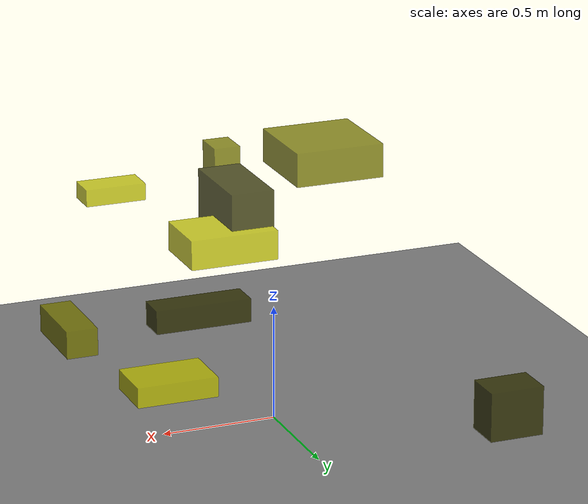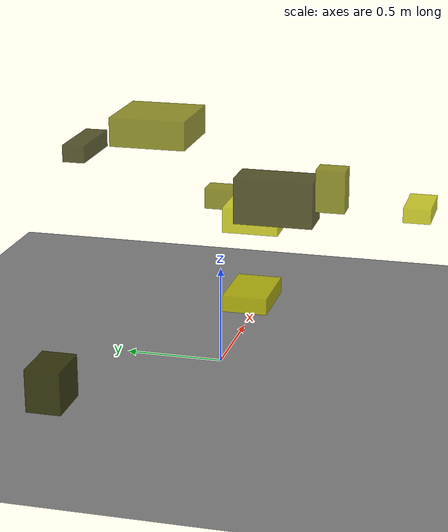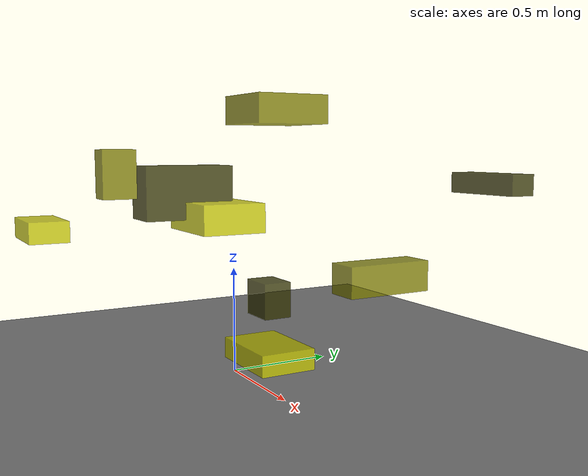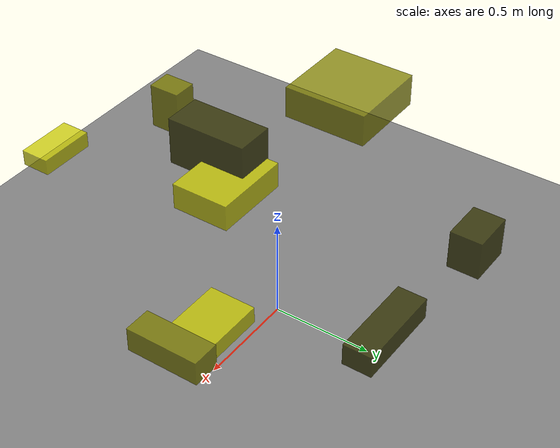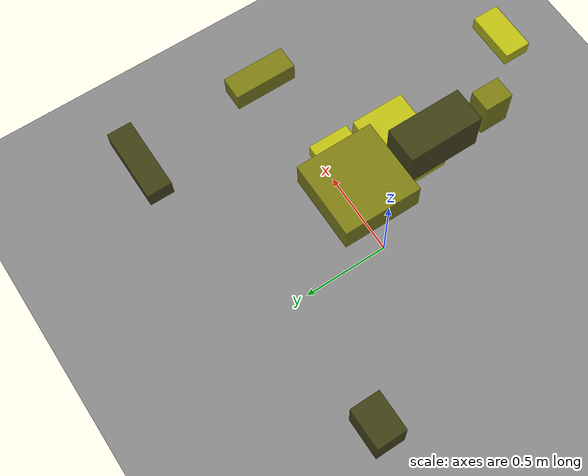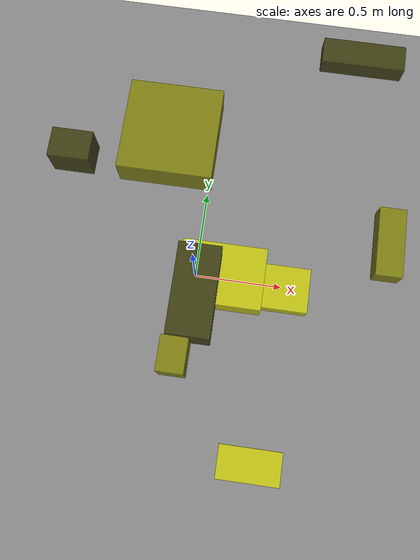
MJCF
<?xml version="1.0"?>
<mujoco model="obstacle_scene">
  <compiler angle="radian" coordinate="local"/>
  <option timestep="0.001" gravity="0 0 -9.81"/>

  <asset>
    <material name="obstacle_mat" rgba="0.8 0.8 0.0 0.8"/>
    <material name="ground_mat" rgba="0.5 0.5 0.5 1"/>
  </asset>

  <worldbody>
    <!-- Ground plane -->
    <geom name="ground" type="plane" size="3 3 0.1" material="ground_mat"/>

    <!-- Obstacles -->
    <body name="obstacle_0" pos="-0.807722 0.613373 0.154209">
      <geom name="obs_0" type="box" size="0.118684 0.087022 0.107653" rgba="0.2 0.2 0.0 0.8"/>
    </body>
    <body name="obstacle_1" pos="0.017605 -0.560612 0.955847">
      <geom name="obs_1" type="box" size="0.057440 0.073131 0.105928" rgba="0.5 0.5 0.0 0.8"/>
    </body>
    <body name="obstacle_2" pos="0.388991 -0.949804 0.773669">
      <geom name="obs_2" type="box" size="0.135467 0.069791 0.037948" rgba="0.8 0.8 0.0 0.8"/>
    </body>
    <body name="obstacle_3" pos="0.691395 0.960364 0.907513">
      <geom name="obs_3" type="box" size="0.192223 0.062218 0.046881" rgba="0.2 0.2 0.0 0.8"/>
    </body>
    <body name="obstacle_4" pos="-0.102531 0.284741 1.252946">
      <geom name="obs_4" type="box" size="0.186265 0.186779 0.070588" rgba="0.5 0.5 0.0 0.8"/>
    </body>
    <body name="obstacle_5" pos="0.165625 -0.156804 0.768948">
      <geom name="obs_5" type="box" size="0.192225 0.141161 0.064027" rgba="0.8 0.8 0.0 0.8"/>
    </body>
    <body name="obstacle_6" pos="0.061672 -0.273686 0.873215">
      <geom name="obs_6" type="box" size="0.094702 0.199514 0.116968" rgba="0.2 0.2 0.0 0.8"/>
    </body>
    <body name="obstacle_7" pos="0.955532 0.157045 0.589081">
      <geom name="obs_7" type="box" size="0.065040 0.172534 0.057849" rgba="0.5 0.5 0.0 0.8"/>
    </body>
    <body name="obstacle_8" pos="0.454433 -0.053694 0.205258">
      <geom name="obs_8" type="box" size="0.178268 0.120299 0.044315" rgba="0.8 0.8 0.0 0.8"/>
    </body>
  </worldbody>
</mujoco>
